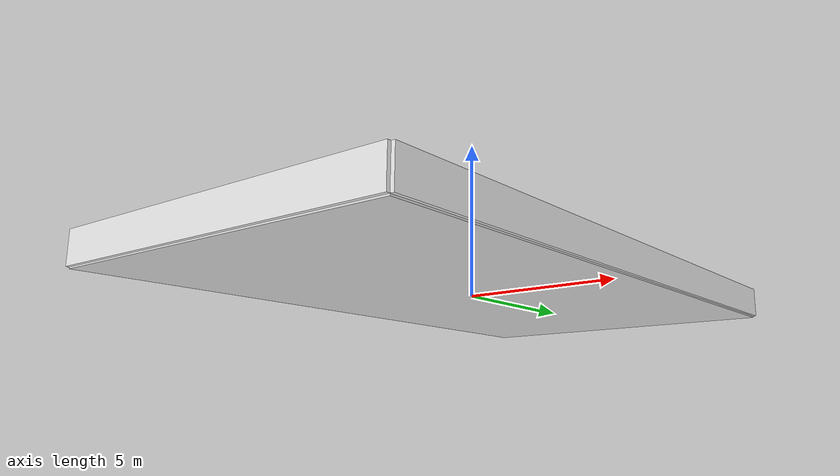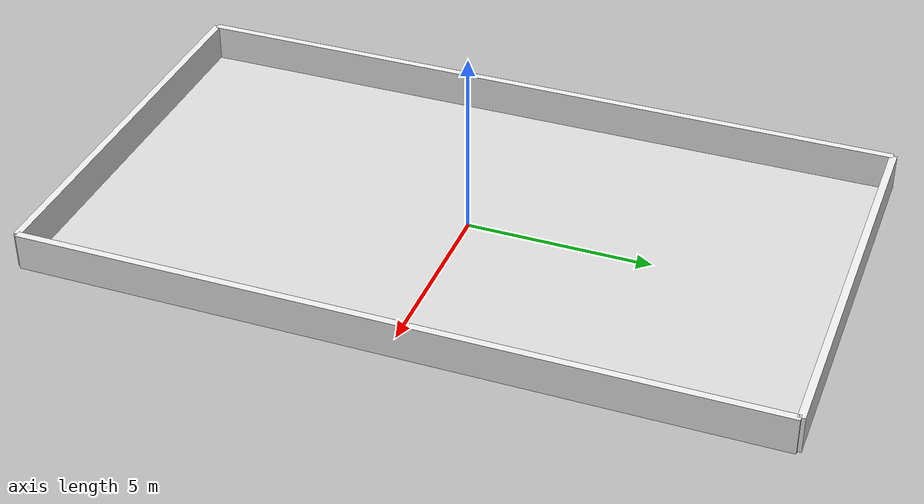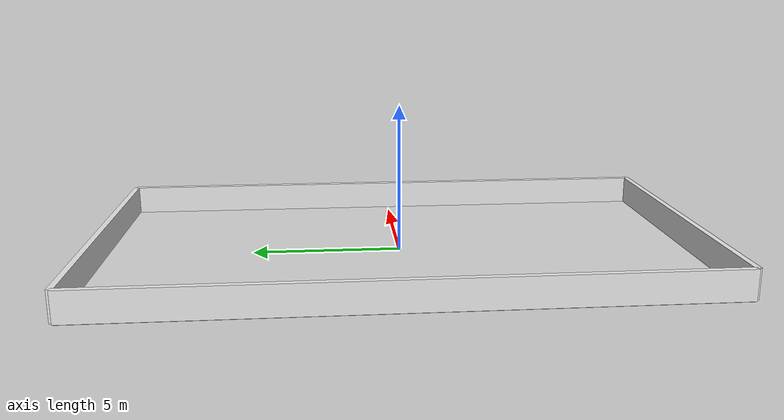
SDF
<?xml version="1.0" ?>
<sdf version="1.8">
  <model name="warehouse_world">
    <static>true</static>
    <pose>0 0 0 0 0 1.57079632679</pose>

    <link name="warehouse_link">

      <!-- FLOOR -->
      <collision name="floor_col">
        <pose>0 0 -0.025 0 0 0</pose>
        <geometry>
          <box>
            <size>20 11.25 0.05</size>
          </box>
        </geometry>
      </collision>

      <visual name="floor_vis">
        <pose>0 0 -0.025 0 0 0</pose>
        <geometry>
          <box>
            <size>20 11.25 0.05</size>
          </box>
        </geometry>
        <material>
          <ambient>0.80 0.80 0.80 1</ambient>
          <diffuse>0.85 0.85 0.85 1</diffuse>
          <specular>0.10 0.10 0.10 1</specular>
        </material>
      </visual>

      <!-- NORTH WALL -->
      <collision name="wall_north">
        <pose>0 5.625 0.5 0 0 0</pose>
        <geometry>
          <box>
            <size>20 0.2 1</size>
          </box>
        </geometry>
      </collision>

      <visual name="wall_north_vis">
        <pose>0 5.625 0.5 0 0 0</pose>
        <geometry>
          <box>
            <size>20 0.2 1</size>
          </box>
        </geometry>
        <material>
          <ambient>0.86 0.86 0.86 1</ambient>
          <diffuse>0.92 0.92 0.92 1</diffuse>
          <specular>0.05 0.05 0.05 1</specular>
        </material>
      </visual>

      <!-- SOUTH WALL -->
      <collision name="wall_south">
        <pose>0 -5.625 0.5 0 0 0</pose>
        <geometry>
          <box>
            <size>20 0.2 1</size>
          </box>
        </geometry>
      </collision>

      <visual name="wall_south_vis">
        <pose>0 -5.625 0.5 0 0 0</pose>
        <geometry>
          <box>
            <size>20 0.2 1</size>
          </box>
        </geometry>
        <material>
          <ambient>0.86 0.86 0.86 1</ambient>
          <diffuse>0.92 0.92 0.92 1</diffuse>
          <specular>0.05 0.05 0.05 1</specular>
        </material>
      </visual>

      <!-- WEST WALL -->
      <collision name="wall_west">
        <pose>-10 0 0.5 0 0 0</pose>
        <geometry>
          <box>
            <size>0.2 11.25 1</size>
          </box>
        </geometry>
      </collision>

      <visual name="wall_west_vis">
        <pose>-10 0 0.5 0 0 0</pose>
        <geometry>
          <box>
            <size>0.2 11.25 1</size>
          </box>
        </geometry>
        <material>
          <ambient>0.86 0.86 0.86 1</ambient>
          <diffuse>0.92 0.92 0.92 1</diffuse>
          <specular>0.05 0.05 0.05 1</specular>
        </material>
      </visual>

      <!-- EAST WALL -->
      <collision name="wall_east">
        <pose>10 0 0.5 0 0 0</pose>
        <geometry>
          <box>
            <size>0.2 11.25 1</size>
          </box>
        </geometry>
      </collision>

      <visual name="wall_east_vis">
        <pose>10 0 0.5 0 0 0</pose>
        <geometry>
          <box>
            <size>0.2 11.25 1</size>
          </box>
        </geometry>
        <material>
          <ambient>0.86 0.86 0.86 1</ambient>
          <diffuse>0.92 0.92 0.92 1</diffuse>
          <specular>0.05 0.05 0.05 1</specular>
        </material>
      </visual>

    </link>
  </model>
</sdf>
